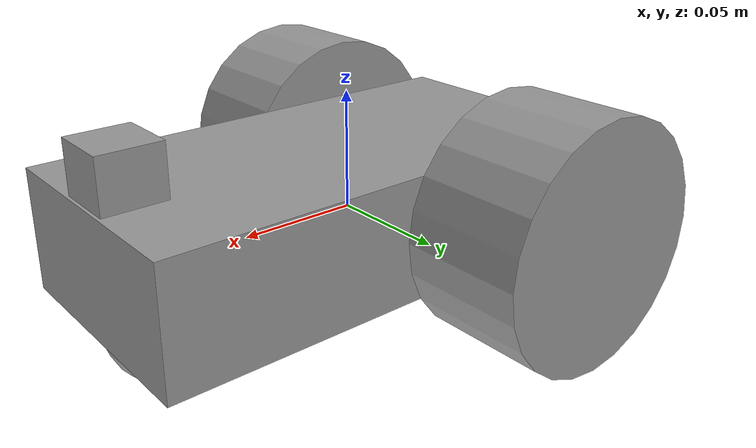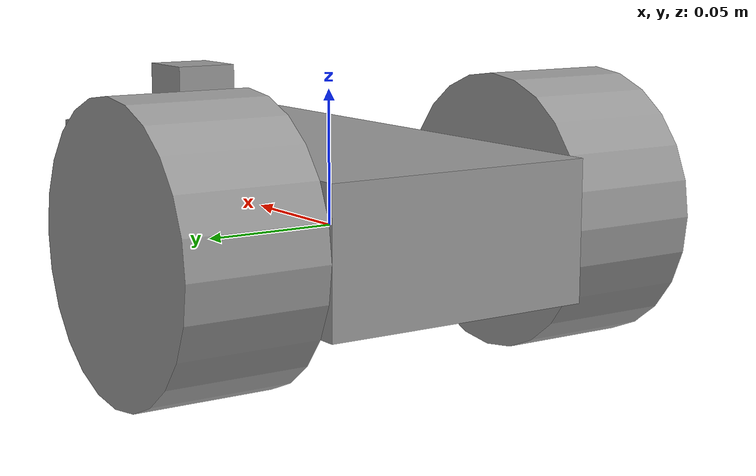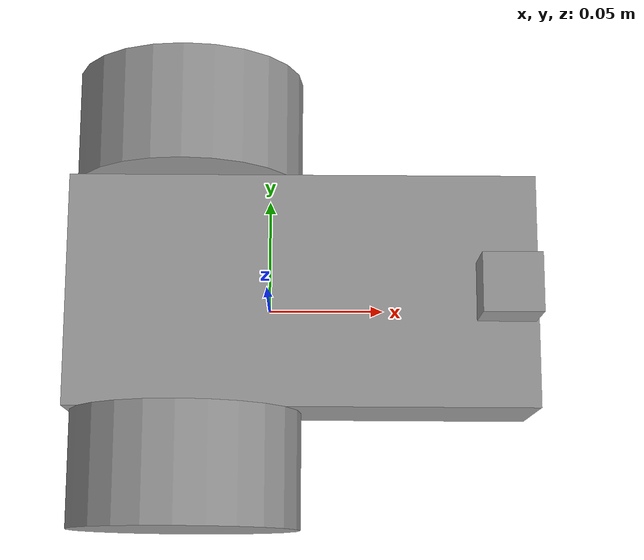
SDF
<?xml version='1.0'?>
<sdf version='1.7'>
  <model name='robotTask1'>
    <link name='link_1'>
      <inertial>
        <mass>1</mass>
        <inertia>
          <ixx>0.166667</ixx>
          <ixy>0</ixy>
          <ixz>0</ixz>
          <iyy>0.166667</iyy>
          <iyz>0</iyz>
          <izz>0.166667</izz>
        </inertia>
        <pose>0 0 0 0 -0 0</pose>
      </inertial>
      <pose>0.01425 0.00375 0.00625 0 -0 0</pose>
      <gravity>1</gravity>
      <self_collide>0</self_collide>
      <kinematic>0</kinematic>
      <enable_wind>0</enable_wind>
      <visual name='visual'>
        <pose>0 0 0 0 -0 0</pose>
        <geometry>
          <box>
            <size>0.2 0.1 0.05</size>
          </box>
        </geometry>
        <material>
          <lighting>1</lighting>
          <script>
            <uri>file://media/materials/scripts/gazebo.material</uri>
            <name>Gazebo/Grey</name>
          </script>
          <shader type='pixel'>
            <normal_map>__default__</normal_map>
          </shader>
          <ambient>1 1 1 1</ambient>
          <diffuse>1 1 1 1</diffuse>
          <specular>1 1 1 1</specular>
          <emissive>1 1 1 1</emissive>
        </material>
        <transparency>0</transparency>
        <cast_shadows>1</cast_shadows>
      </visual>
      <collision name='collision'>
        <laser_retro>0</laser_retro>
        <max_contacts>10</max_contacts>
        <pose>0 0 0 0 -0 0</pose>
        <geometry>
          <box>
            <size>0.2 0.1 0.05</size>
          </box>
        </geometry>
        <surface>
          <friction>
            <ode>
              <mu>1</mu>
              <mu2>1</mu2>
              <fdir1>0 0 0</fdir1>
              <slip1>0</slip1>
              <slip2>0</slip2>
            </ode>
            <torsional>
              <coefficient>1</coefficient>
              <patch_radius>0</patch_radius>
              <surface_radius>0</surface_radius>
              <use_patch_radius>1</use_patch_radius>
              <ode>
                <slip>0</slip>
              </ode>
            </torsional>
          </friction>
          <bounce>
            <restitution_coefficient>0</restitution_coefficient>
            <threshold>1e+06</threshold>
          </bounce>
          <contact>
            <collide_without_contact>0</collide_without_contact>
            <collide_without_contact_bitmask>1</collide_without_contact_bitmask>
            <collide_bitmask>1</collide_bitmask>
            <ode>
              <soft_cfm>0</soft_cfm>
              <soft_erp>0.2</soft_erp>
              <kp>1e+13</kp>
              <kd>1</kd>
              <max_vel>0.01</max_vel>
              <min_depth>0</min_depth>
            </ode>
            <bullet>
              <split_impulse>1</split_impulse>
              <split_impulse_penetration_threshold>-0.01</split_impulse_penetration_threshold>
              <soft_cfm>0</soft_cfm>
              <soft_erp>0.2</soft_erp>
              <kp>1e+13</kp>
              <kd>1</kd>
            </bullet>
          </contact>
        </surface>
      </collision>
    </link>
    <link name='link_3'>
      <inertial>
        <mass>1</mass>
        <inertia>
          <ixx>0.145833</ixx>
          <ixy>0</ixy>
          <ixz>0</ixz>
          <iyy>0.145833</iyy>
          <iyz>0</iyz>
          <izz>0.125</izz>
        </inertia>
        <pose>0 0 0 0 -0 0</pose>
      </inertial>
      <pose>-0.03575 -0.071245 0.00625 1.5707 -0 0</pose>
      <gravity>1</gravity>
      <self_collide>0</self_collide>
      <kinematic>0</kinematic>
      <enable_wind>0</enable_wind>
      <visual name='visual'>
        <pose>0 0 0 0 -0 0</pose>
        <geometry>
          <cylinder>
            <radius>0.05</radius>
            <length>0.05</length>
          </cylinder>
        </geometry>
        <material>
          <lighting>1</lighting>
          <script>
            <uri>file://media/materials/scripts/gazebo.material</uri>
            <name>Gazebo/Grey</name>
          </script>
          <shader type='pixel'>
            <normal_map>__default__</normal_map>
          </shader>
          <ambient>0 0 0 1</ambient>
          <diffuse>0 0 0 1</diffuse>
          <specular>0 0 0 1</specular>
          <emissive>0 0 0 1</emissive>
        </material>
        <transparency>0</transparency>
        <cast_shadows>1</cast_shadows>
      </visual>
      <collision name='collision'>
        <laser_retro>0</laser_retro>
        <max_contacts>10</max_contacts>
        <pose>0 0 0 0 -0 0</pose>
        <geometry>
          <cylinder>
            <radius>0.05</radius>
            <length>0.05</length>
          </cylinder>
        </geometry>
        <surface>
          <friction>
            <ode>
              <mu>1</mu>
              <mu2>1</mu2>
              <fdir1>0 0 0</fdir1>
              <slip1>0</slip1>
              <slip2>0</slip2>
            </ode>
            <torsional>
              <coefficient>1</coefficient>
              <patch_radius>0</patch_radius>
              <surface_radius>0</surface_radius>
              <use_patch_radius>1</use_patch_radius>
              <ode>
                <slip>0</slip>
              </ode>
            </torsional>
          </friction>
          <bounce>
            <restitution_coefficient>0</restitution_coefficient>
            <threshold>1e+06</threshold>
          </bounce>
          <contact>
            <collide_without_contact>0</collide_without_contact>
            <collide_without_contact_bitmask>1</collide_without_contact_bitmask>
            <collide_bitmask>1</collide_bitmask>
            <ode>
              <soft_cfm>0</soft_cfm>
              <soft_erp>0.2</soft_erp>
              <kp>1e+13</kp>
              <kd>1</kd>
              <max_vel>0.01</max_vel>
              <min_depth>0</min_depth>
            </ode>
            <bullet>
              <split_impulse>1</split_impulse>
              <split_impulse_penetration_threshold>-0.01</split_impulse_penetration_threshold>
              <soft_cfm>0</soft_cfm>
              <soft_erp>0.2</soft_erp>
              <kp>1e+13</kp>
              <kd>1</kd>
            </bullet>
          </contact>
        </surface>
      </collision>
    </link>
    <link name='link_3_clone'>
      <inertial>
        <mass>1</mass>
        <inertia>
          <ixx>0.145833</ixx>
          <ixy>0</ixy>
          <ixz>0</ixz>
          <iyy>0.145833</iyy>
          <iyz>0</iyz>
          <izz>0.125</izz>
        </inertia>
        <pose>0 0 0 0 -0 0</pose>
      </inertial>
      <pose>-0.03575 0.078745 0.00625 1.5707 -0 0</pose>
      <gravity>1</gravity>
      <self_collide>0</self_collide>
      <kinematic>0</kinematic>
      <enable_wind>0</enable_wind>
      <visual name='visual'>
        <pose>0 0 0 0 -0 0</pose>
        <geometry>
          <cylinder>
            <radius>0.05</radius>
            <length>0.05</length>
          </cylinder>
        </geometry>
        <material>
          <lighting>1</lighting>
          <script>
            <uri>file://media/materials/scripts/gazebo.material</uri>
            <name>Gazebo/Grey</name>
          </script>
          <shader type='pixel'>
            <normal_map>__default__</normal_map>
          </shader>
          <ambient>0 0 0 1</ambient>
          <diffuse>0 0 0 1</diffuse>
          <specular>0 0 0 1</specular>
          <emissive>0 0 0 1</emissive>
        </material>
        <transparency>0</transparency>
        <cast_shadows>1</cast_shadows>
      </visual>
      <collision name='collision'>
        <laser_retro>0</laser_retro>
        <max_contacts>10</max_contacts>
        <pose>0 0 0 0 -0 0</pose>
        <geometry>
          <cylinder>
            <radius>0.05</radius>
            <length>0.05</length>
          </cylinder>
        </geometry>
        <surface>
          <friction>
            <ode>
              <mu>1</mu>
              <mu2>1</mu2>
              <fdir1>0 0 0</fdir1>
              <slip1>0</slip1>
              <slip2>0</slip2>
            </ode>
            <torsional>
              <coefficient>1</coefficient>
              <patch_radius>0</patch_radius>
              <surface_radius>0</surface_radius>
              <use_patch_radius>1</use_patch_radius>
              <ode>
                <slip>0</slip>
              </ode>
            </torsional>
          </friction>
          <bounce>
            <restitution_coefficient>0</restitution_coefficient>
            <threshold>1e+06</threshold>
          </bounce>
          <contact>
            <collide_without_contact>0</collide_without_contact>
            <collide_without_contact_bitmask>1</collide_without_contact_bitmask>
            <collide_bitmask>1</collide_bitmask>
            <ode>
              <soft_cfm>0</soft_cfm>
              <soft_erp>0.2</soft_erp>
              <kp>1e+13</kp>
              <kd>1</kd>
              <max_vel>0.01</max_vel>
              <min_depth>0</min_depth>
            </ode>
            <bullet>
              <split_impulse>1</split_impulse>
              <split_impulse_penetration_threshold>-0.01</split_impulse_penetration_threshold>
              <soft_cfm>0</soft_cfm>
              <soft_erp>0.2</soft_erp>
              <kp>1e+13</kp>
              <kd>1</kd>
            </bullet>
          </contact>
        </surface>
      </collision>
    </link>
    <link name='link_4'>
      <inertial>
        <mass>1</mass>
        <inertia>
          <ixx>0.1</ixx>
          <ixy>0</ixy>
          <ixz>0</ixz>
          <iyy>0.1</iyy>
          <iyz>0</iyz>
          <izz>0.1</izz>
        </inertia>
        <pose>0 0 0 0 -0 0</pose>
      </inertial>
      <pose>0.08675 0.00375 -0.01875 0 -0 0</pose>
      <gravity>1</gravity>
      <self_collide>0</self_collide>
      <kinematic>0</kinematic>
      <enable_wind>0</enable_wind>
      <visual name='visual'>
        <pose>0 0 0 0 -0 0</pose>
        <geometry>
          <sphere>
            <radius>0.025</radius>
          </sphere>
        </geometry>
        <material>
          <lighting>1</lighting>
          <script>
            <uri>file://media/materials/scripts/gazebo.material</uri>
            <name>Gazebo/Grey</name>
          </script>
          <shader type='pixel'>
            <normal_map>__default__</normal_map>
          </shader>
          <ambient>0 0 0 1</ambient>
          <diffuse>0 0 0 1</diffuse>
          <specular>0 0 0 1</specular>
          <emissive>0 0 0 1</emissive>
        </material>
        <transparency>0</transparency>
        <cast_shadows>1</cast_shadows>
      </visual>
      <collision name='collision'>
        <laser_retro>0</laser_retro>
        <max_contacts>10</max_contacts>
        <pose>0 0 0 0 -0 0</pose>
        <geometry>
          <sphere>
            <radius>0.025</radius>
          </sphere>
        </geometry>
        <surface>
          <friction>
            <ode>
              <mu>1</mu>
              <mu2>1</mu2>
              <fdir1>0 0 0</fdir1>
              <slip1>0</slip1>
              <slip2>0</slip2>
            </ode>
            <torsional>
              <coefficient>1</coefficient>
              <patch_radius>0</patch_radius>
              <surface_radius>0</surface_radius>
              <use_patch_radius>1</use_patch_radius>
              <ode>
                <slip>0</slip>
              </ode>
            </torsional>
          </friction>
          <bounce>
            <restitution_coefficient>0</restitution_coefficient>
            <threshold>1e+06</threshold>
          </bounce>
          <contact>
            <collide_without_contact>0</collide_without_contact>
            <collide_without_contact_bitmask>1</collide_without_contact_bitmask>
            <collide_bitmask>1</collide_bitmask>
            <ode>
              <soft_cfm>0</soft_cfm>
              <soft_erp>0.2</soft_erp>
              <kp>1e+13</kp>
              <kd>1</kd>
              <max_vel>0.01</max_vel>
              <min_depth>0</min_depth>
            </ode>
            <bullet>
              <split_impulse>1</split_impulse>
              <split_impulse_penetration_threshold>-0.01</split_impulse_penetration_threshold>
              <soft_cfm>0</soft_cfm>
              <soft_erp>0.2</soft_erp>
              <kp>1e+13</kp>
              <kd>1</kd>
            </bullet>
          </contact>
        </surface>
      </collision>
    </link>
    <link name='link_5'>
      <inertial>
        <mass>1</mass>
        <inertia>
          <ixx>0.166667</ixx>
          <ixy>0</ixy>
          <ixz>0</ixz>
          <iyy>0.166667</iyy>
          <iyz>0</iyz>
          <izz>0.166667</izz>
        </inertia>
        <pose>0 0 0 0 -0 0</pose>
      </inertial>
      <pose>0.1005 0.00275 0.04 0 -0 0</pose>
      <gravity>1</gravity>
      <self_collide>0</self_collide>
      <kinematic>0</kinematic>
      <enable_wind>0</enable_wind>
      <visual name='visual'>
        <pose>0 0 0 0 -0 0</pose>
        <geometry>
          <box>
            <size>0.025 0.025 0.025</size>
          </box>
        </geometry>
        <material>
          <lighting>1</lighting>
          <script>
            <uri>file://media/materials/scripts/gazebo.material</uri>
            <name>Gazebo/Grey</name>
          </script>
          <shader type='pixel'>
            <normal_map>__default__</normal_map>
          </shader>
          <ambient>0.3 0.3 0.3 1</ambient>
          <diffuse>0.7 0.7 0.7 1</diffuse>
          <specular>0.01 0.01 0.01 1</specular>
          <emissive>0 0 0 1</emissive>
        </material>
        <transparency>0</transparency>
        <cast_shadows>1</cast_shadows>
      </visual>
      <collision name='collision'>
        <laser_retro>0</laser_retro>
        <max_contacts>10</max_contacts>
        <pose>0 0 0 0 -0 0</pose>
        <geometry>
          <box>
            <size>0.025 0.025 0.025</size>
          </box>
        </geometry>
        <surface>
          <friction>
            <ode>
              <mu>1</mu>
              <mu2>1</mu2>
              <fdir1>0 0 0</fdir1>
              <slip1>0</slip1>
              <slip2>0</slip2>
            </ode>
            <torsional>
              <coefficient>1</coefficient>
              <patch_radius>0</patch_radius>
              <surface_radius>0</surface_radius>
              <use_patch_radius>1</use_patch_radius>
              <ode>
                <slip>0</slip>
              </ode>
            </torsional>
          </friction>
          <bounce>
            <restitution_coefficient>0</restitution_coefficient>
            <threshold>1e+06</threshold>
          </bounce>
          <contact>
            <collide_without_contact>0</collide_without_contact>
            <collide_without_contact_bitmask>1</collide_without_contact_bitmask>
            <collide_bitmask>1</collide_bitmask>
            <ode>
              <soft_cfm>0</soft_cfm>
              <soft_erp>0.2</soft_erp>
              <kp>1e+13</kp>
              <kd>1</kd>
              <max_vel>0.01</max_vel>
              <min_depth>0</min_depth>
            </ode>
            <bullet>
              <split_impulse>1</split_impulse>
              <split_impulse_penetration_threshold>-0.01</split_impulse_penetration_threshold>
              <soft_cfm>0</soft_cfm>
              <soft_erp>0.2</soft_erp>
              <kp>1e+13</kp>
              <kd>1</kd>
            </bullet>
          </contact>
        </surface>
      </collision>
    </link>
    <joint name='Left_Wheel_Joint' type='revolute'>
      <parent>link_1</parent>
      <child>link_3_clone</child>
      <pose>0 0 0 0 -0 0</pose>
      <axis>
        <xyz>0 0 1</xyz>
        <limit>
          <lower>-1.79769e+308</lower>
          <upper>1.79769e+308</upper>
          <effort>-1</effort>
          <velocity>-1</velocity>
        </limit>
        <dynamics>
          <spring_reference>0</spring_reference>
          <spring_stiffness>0</spring_stiffness>
          <damping>0</damping>
          <friction>0</friction>
        </dynamics>
      </axis>
      <physics>
        <ode>
          <limit>
            <cfm>0</cfm>
            <erp>0.2</erp>
          </limit>
          <suspension>
            <cfm>0</cfm>
            <erp>0.2</erp>
          </suspension>
        </ode>
      </physics>
    </joint>
    <joint name='Right_Wheel_Joint' type='revolute'>
      <parent>link_1</parent>
      <child>link_3</child>
      <pose>0 0 0 0 -0 0</pose>
      <axis>
        <xyz>0 0 1</xyz>
        <limit>
          <lower>-1.79769e+308</lower>
          <upper>1.79769e+308</upper>
          <effort>-1</effort>
          <velocity>-1</velocity>
        </limit>
        <dynamics>
          <spring_reference>0</spring_reference>
          <spring_stiffness>0</spring_stiffness>
          <damping>0</damping>
          <friction>0</friction>
        </dynamics>
      </axis>
      <physics>
        <ode>
          <limit>
            <cfm>0</cfm>
            <erp>0.2</erp>
          </limit>
          <suspension>
            <cfm>0</cfm>
            <erp>0.2</erp>
          </suspension>
        </ode>
      </physics>
    </joint>
    <joint name='Ball_Joint' type='ball'>
      <parent>link_1</parent>
      <child>link_4</child>
      <pose>0 0 0 0 -0 0</pose>
      <physics>
        <ode>
          <limit>
            <cfm>0</cfm>
            <erp>0.2</erp>
          </limit>
          <suspension>
            <cfm>0</cfm>
            <erp>0.2</erp>
          </suspension>
        </ode>
      </physics>
    </joint>
    <joint name='Lazer_Scanner' type='fixed'>
      <parent>link_1</parent>
      <child>link_5</child>
      <pose>0 0 0 0 -0 0</pose>
      <physics>
        <ode>
          <limit>
            <cfm>0</cfm>
            <erp>0.2</erp>
          </limit>
          <suspension>
            <cfm>0</cfm>
            <erp>0.2</erp>
          </suspension>
        </ode>
      </physics>
    </joint>
    <static>0</static>
    <allow_auto_disable>1</allow_auto_disable>
    <plugin name='gazebo_ros_diff_drive' filename='libgazebo_ros_diff_drive.so'/>
  </model>
</sdf>
